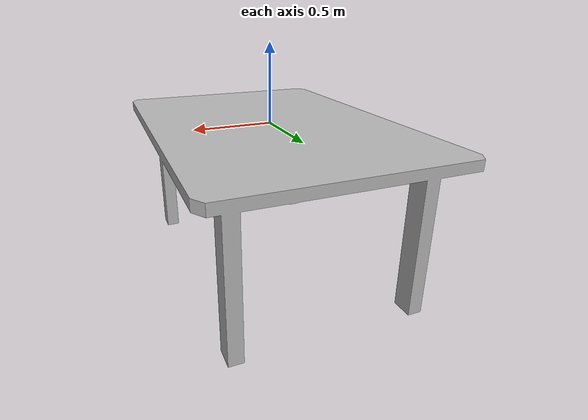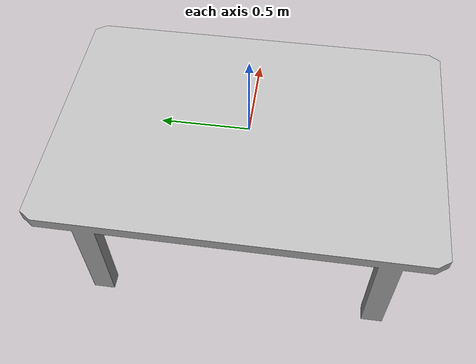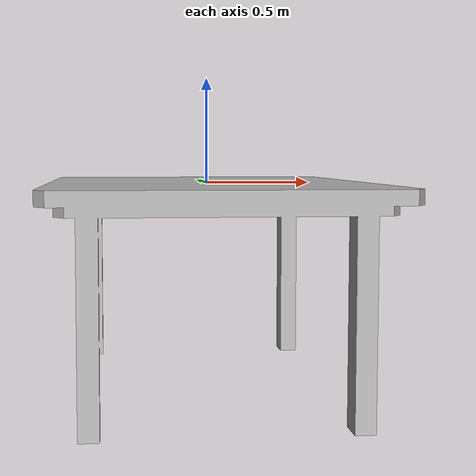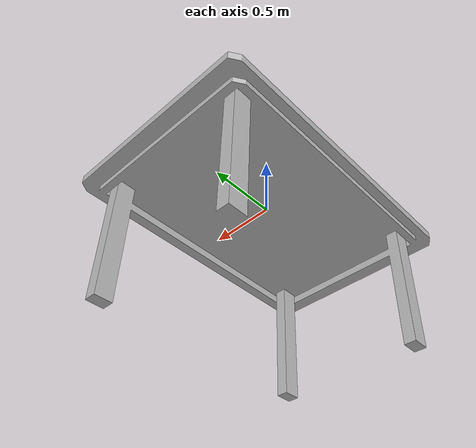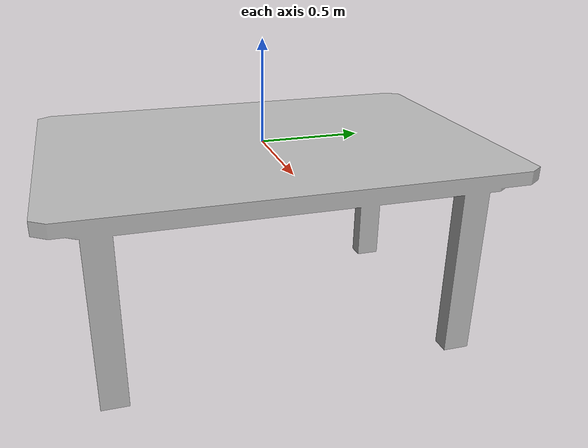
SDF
<?xml version="1.0"?>
<sdf version="1.7">
  <model name="table">
    <link name="table_body">
      <visual name="table_visual">
        <geometry>
          <mesh>
            <uri>table_wide.obj</uri>
          </mesh>
        </geometry>
      </visual>
      <collision name="collision">
        <pose> 0 0 -0.05 0 0 0</pose>
        <geometry>
          <box>
            <size>1.5 2.1875 0.1</size>
          </box>
        </geometry>
        <drake:proximity_properties>
          <drake:compliant_hydroelastic/>
          <drake:hydroelastic_modulus>1e10</drake:hydroelastic_modulus>
          <drake:mu_static>0.1</drake:mu_static>
          <drake:mu_dynamic>0.1</drake:mu_dynamic>
          <drake:hunt_crossley_dissipation>1e8</drake:hunt_crossley_dissipation>
          <drake:mesh_resolution_hint>0.00001</drake:mesh_resolution_hint>
        </drake:proximity_properties>
      </collision>
    </link>
  </model>
</sdf>
